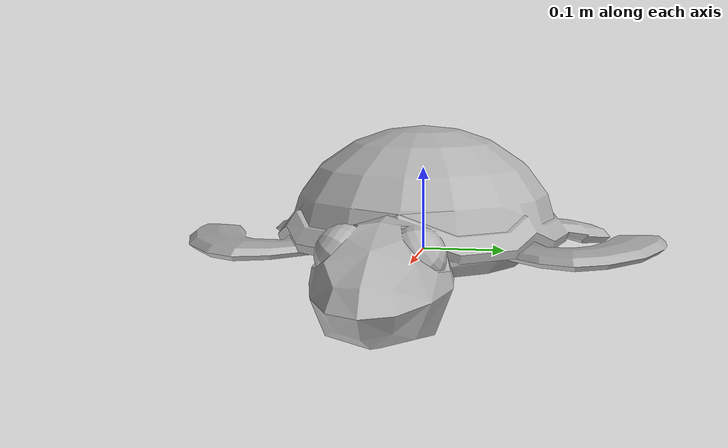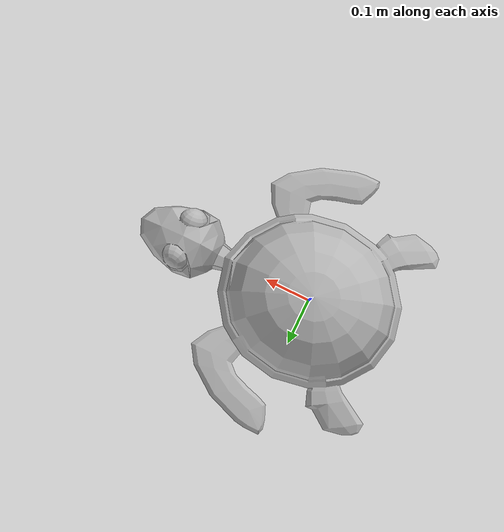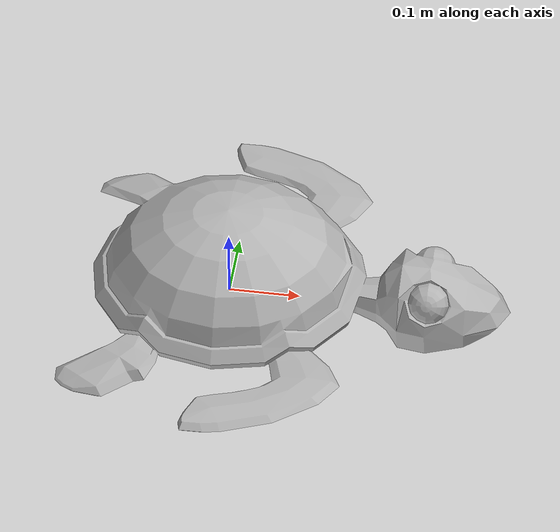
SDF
<?xml version="1.0" ?>
<sdf version="1.6">
  <model name="turtle_static">
    <link name="link">
      <inertial>
        <pose>0 0 -2 0 0 0</pose>
        <!-- Mass determined based on buoyancy geometry so object
             floats at mid-point of sphere -->
        <mass>20</mass>
        <!-- Mark only - based on cylinder -->
        <inertia>
          <ixx>1.0</ixx>
          <ixy>0</ixy>
          <ixz>0</ixz>
          <iyy>1.0</iyy>
          <iyz>0</iyz>
          <izz>0.1</izz>
        </inertia>
      </inertial>
      <collision name="turtle_collision">
        <pose>0.08 0 0.05 0 0 0</pose>
        <geometry>
          <cylinder>
            <radius>0.35</radius>
            <length>0.23</length>
          </cylinder>
        </geometry>
      </collision>
      <visual name="turtle_visual">
        <geometry>
	        <mesh><uri>model://turtle_buoy/meshes/turtle.dae</uri></mesh>
        </geometry>
      </visual>
    </link>
    <plugin name="TurtleBuoyancyPlugin" filename="libbuoyancy_gazebo_plugin.so">
      <wave_model>ocean_waves</wave_model>
      <fluid_density>1000</fluid_density>
      <fluid_level>0.0</fluid_level>
      <linear_drag>25.0</linear_drag>
      <angular_drag>2.0</angular_drag>
      <buoyancy name="buoyancy_sphere">
        <link_name>link</link_name>
        <pose>0 0 0.2 0 0 0</pose>
        <geometry>
          <sphere>
            <radius>0.325</radius>
          </sphere>
        </geometry>
      </buoyancy>
    </plugin>
  </model>
</sdf>
